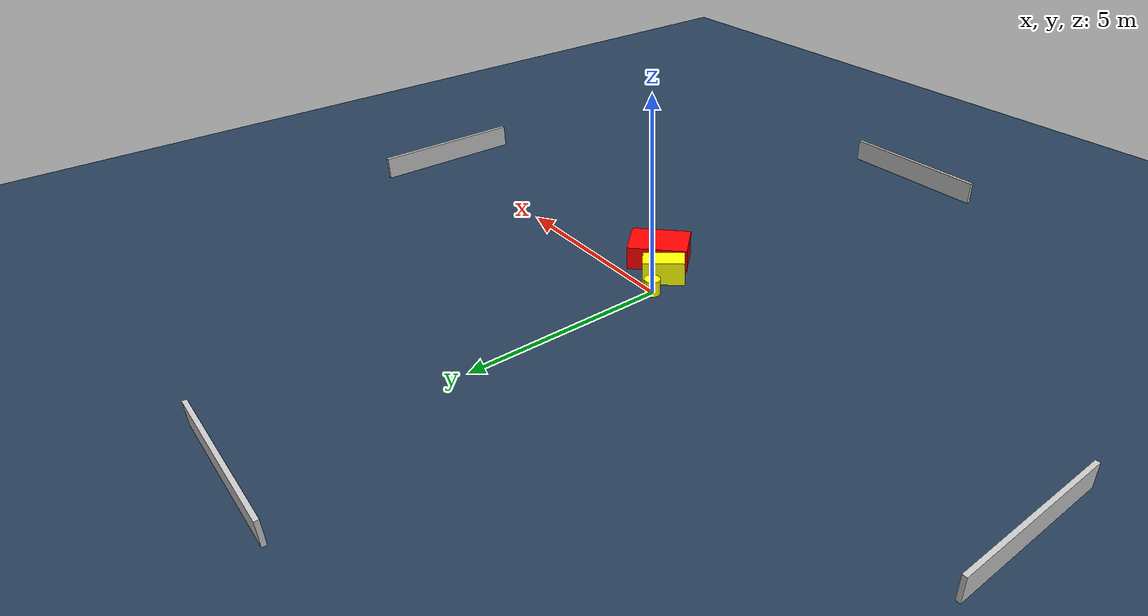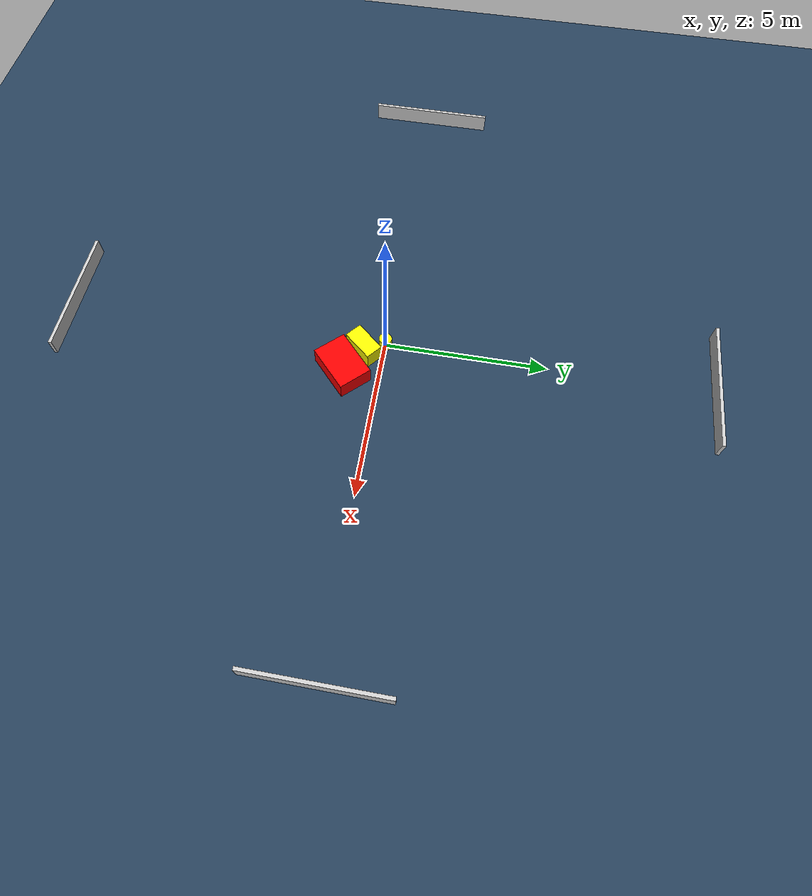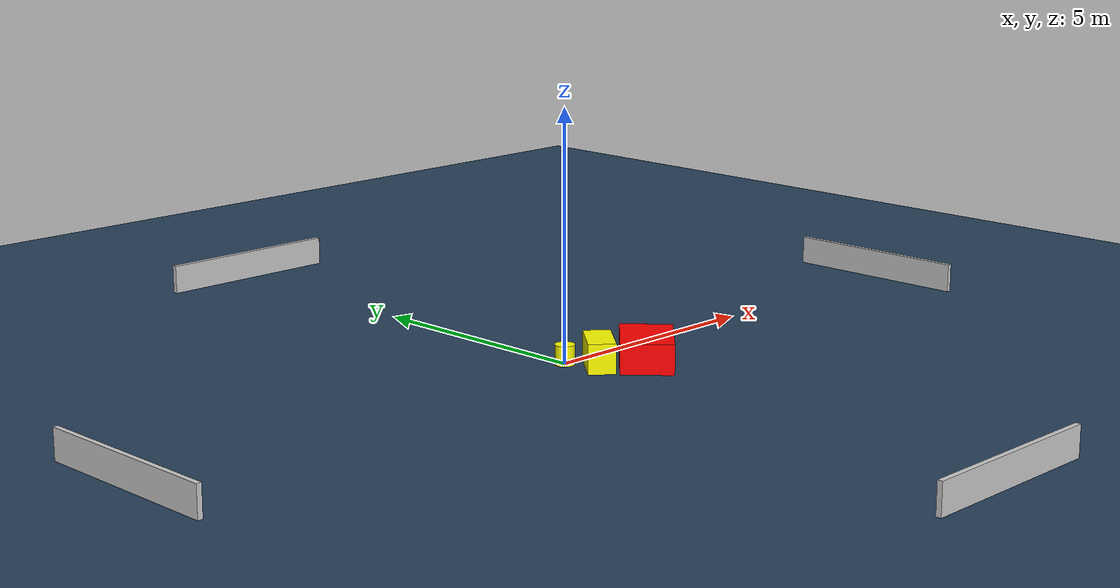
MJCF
<?xml version="1.0" ?>
<mujoco model="generated_environment">
  <option timestep="0.01" integrator="RK4" cone="elliptic"/>
  <default>
    <geom density="1"/>
  </default>
  <asset>
    <texture builtin="gradient" height="3072" name="skybox" rgb1="0.3 0.5 0.7" rgb2="0 0 0" type="skybox" width="512"/>
    <texture builtin="checker" height="300" name="groundplane" rgb1="0.2 0.3 0.4" rgb2="0.1 0.2 0.3" type="2d" width="300"/>
    <material name="groundplane" reflectance="0.2" texrepeat="5 5" texture="groundplane"/>
  </asset>
  <worldbody>
    <light dir="0 0 -1" directional="true" pos="0 0 1.5"/>
    <geom condim="3" friction="0.5 0.005 0.001" material="groundplane" name="floor" pos="0 0 0" size="0 0 0.05" type="plane"/>
    <body name="walls">
      <geom name="wall_1" condim="4" pos="-10.0 0.0 0.3" rgba="0.800000011920929 0.800000011920929 0.800000011920929 1.0" size="0.05 2.0 0.3" type="box"/>
      <geom name="wall_2" condim="4" pos="10.0 0.0 0.3" rgba="0.800000011920929 0.800000011920929 0.800000011920929 1.0" size="0.05 2.0 0.3" type="box"/>
      <geom name="wall_3" condim="4" pos="0.0 -10.0 0.3" rgba="0.800000011920929 0.800000011920929 0.800000011920929 1.0" size="2.0 0.05 0.3" type="box"/>
      <geom name="wall_4" condim="4" pos="0.0 10.0 0.3" rgba="0.800000011920929 0.800000011920929 0.800000011920929 1.0" size="2.0 0.05 0.3" type="box"/>
    </body>
    <body name="robot">
      <joint name="joint_x" type="slide" pos="0 0 0" axis="1 0 0"/>
      <joint name="joint_y" type="slide" pos="0 0 0" axis="0 1 0"/>
      <geom name="robot" type="cylinder" pos="0.0 0.0 0.2" size="0.2 0.2 0.0" mass="5.0" friction="1.0 0.005 0.0001" condim="4" rgba="1.0 1.0 0.0 1.0"/>
    </body>
    <body name="obstacle_1_movable">
      <geom name="obstacle_1_movable" condim="4" pos="0.3122586302396369 -0.6180274180985587 0.3" euler="0 0 49.73041683258878" friction="0.0 0.005 0.001" rgba="1.0 1.0 0.0 1.0" size="0.5173204865394314 0.27322174337023125 0.3" type="box" mass="0.1"/>
      <joint type="free"/>
    </body>
    <body name="obstacle_2_static">
      <geom name="obstacle_2_static" condim="4" pos="1.0970951062006087 -1.1272930968224475 0.3" euler="0 0 223.32207603842255" friction="0.0 0.005 0.001" rgba="1.0 0.0 0.0 1.0" size="0.7539382086112574 0.5234446652733007 0.3" type="box"/>
    </body>
  </worldbody>
  <actuator>
    <motor name="actuator_x" joint="joint_x" gear="1" ctrlrange="-1 1"/>
    <motor name="actuator_y" joint="joint_y" gear="1" ctrlrange="-1 1"/>
  </actuator>
</mujoco>
